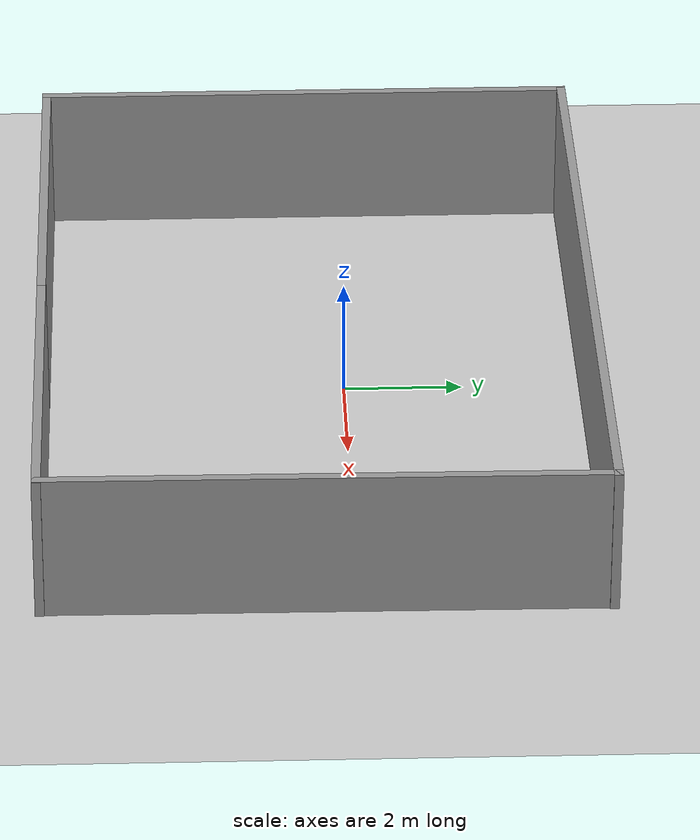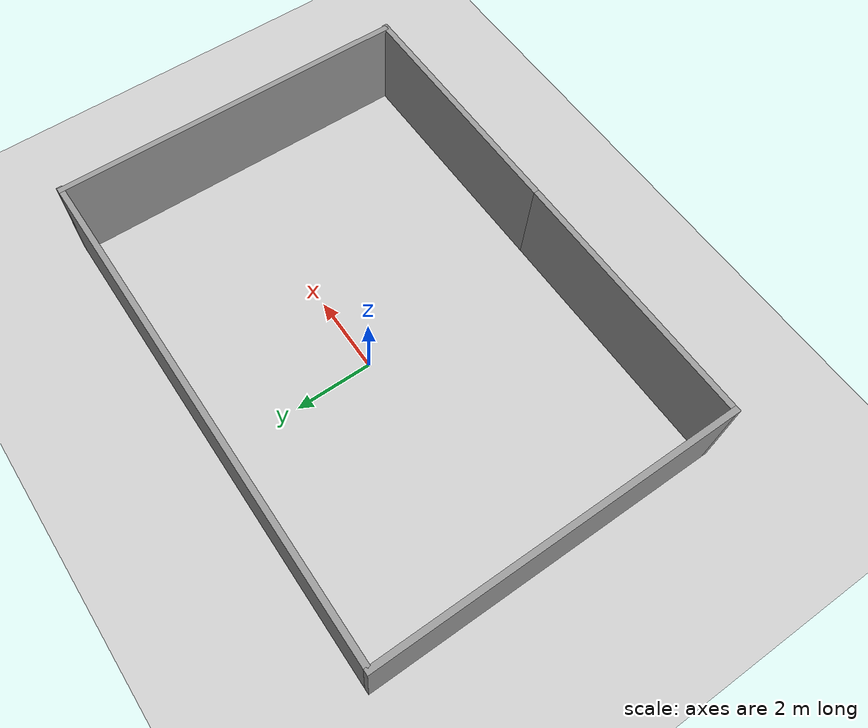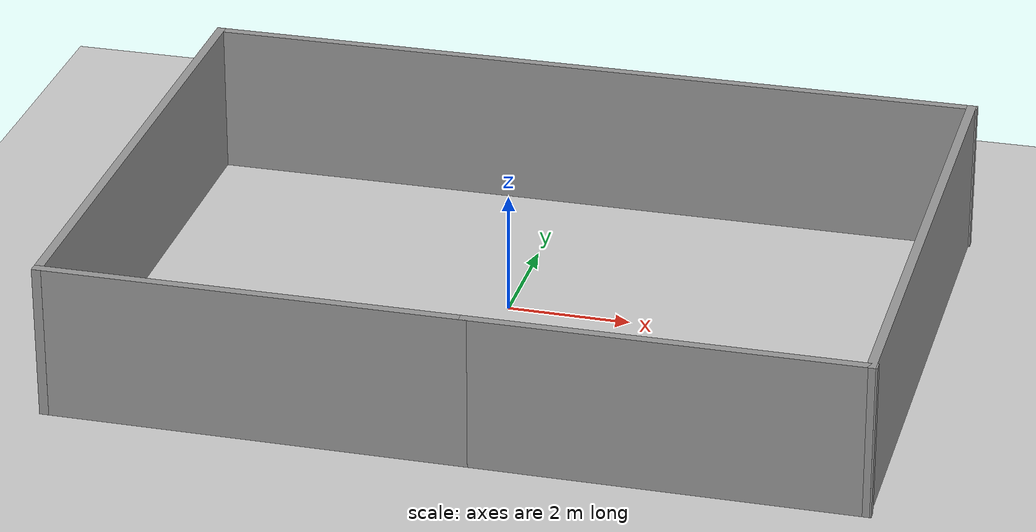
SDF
<sdf version="1.7">
 <world name="default">
  <light name="sun" type="directional">
   <pose>0 0 10 0 -0 0</pose>
   <diffuse>0.8 0.8 0.8 1</diffuse>
   <specular>0.2 0.2 0.2 1</specular>
   <attenuation>
    <range>1000</range>
    <constant>0.9</constant>
    <linear>0.01</linear>
    <quadratic>0.001</quadratic>
   </attenuation>
   <direction>-0.5 0.1 -0.9</direction>
   <spot><inner_angle>0</inner_angle><outer_angle>0</outer_angle><falloff>0</falloff></spot>
  </light>
  <model name="ground_plane">
   <static>1</static>
   <link name="link">
    <collision name="collision">
     <geometry><plane><normal>0 0 1</normal><size>100 100</size></plane></geometry>
     <surface><friction><ode><mu>100</mu><mu2>50</mu2></ode></friction></surface>
    </collision>
    <visual name="visual">
     <cast_shadows>0</cast_shadows>
     <geometry><plane><normal>0 0 1</normal><size>100 100</size></plane></geometry>
     <material>
      <script><uri>file://media/materials/scripts/gazebo.material</uri><name>Gazebo/Grey</name></script>
     </material>
    </visual>
   </link>
  </model>
  <gravity>0 0 -9.8</gravity>
  <magnetic_field>6e-06 2.3e-05 -4.2e-05</magnetic_field>
  <atmosphere type="adiabatic"/>
  <physics type="ode">
   <max_step_size>0.001</max_step_size>
   <real_time_factor>1</real_time_factor>
   <real_time_update_rate>1000</real_time_update_rate>
  </physics>
  <scene><ambient>0.4 0.4 0.4 1</ambient><background>0.7 0.7 0.7 1</background><shadows>1</shadows></scene>
  <audio><device>default</device></audio>
  <spherical_coordinates>
   <surface_model>EARTH_WGS84</surface_model>
   <latitude_deg>0</latitude_deg>
   <longitude_deg>0</longitude_deg>
   <elevation>0</elevation>
   <heading_deg>0</heading_deg>
  </spherical_coordinates>
  <model name="Wall">
   <pose>0.358699 -0.497517 0 0 -0 0</pose>
   <link name="Wall_1">
    <collision name="Wall_1_Collision">
     <geometry><box><size>6.8118 0.15 2.5</size></box></geometry>
     <pose>0 0 1.25 0 -0 0</pose>
    </collision>
    <visual name="Wall_1_Visual">
     <pose>0 0 1.25 0 -0 0</pose>
     <geometry><box><size>6.8118 0.15 2.5</size></box></geometry>
     <material>
      <script><uri>file://media/materials/scripts/gazebo.material</uri><name>Gazebo/Grey</name></script>
      <ambient>0 0 0 1</ambient>
     </material>
     <meta><layer>0</layer></meta>
    </visual>
    <pose>-3.1074 -4.5633 0 0 -0 0</pose>
   </link>
   <link name="Wall_5">
    <collision name="Wall_5_Collision">
     <geometry><box><size>9.27757 0.15 2.5</size></box></geometry>
     <pose>0 0 1.25 0 -0 0</pose>
    </collision>
    <visual name="Wall_5_Visual">
     <pose>0 0 1.25 0 -0 0</pose>
     <geometry><box><size>9.27757 0.15 2.5</size></box></geometry>
     <material>
      <script><uri>file://media/materials/scripts/gazebo.material</uri><name>Gazebo/Grey</name></script>
      <ambient>0 0 0 1</ambient>
     </material>
     <meta><layer>0</layer></meta>
    </visual>
    <pose>-6.4383 0 0 0 -0 1.5708</pose>
   </link>
   <link name="Wall_6">
    <collision name="Wall_6_Collision">
     <geometry><box><size>13 0.15 2.5</size></box></geometry>
     <pose>0 0 1.25 0 -0 0</pose>
    </collision>
    <visual name="Wall_6_Visual">
     <pose>0 0 1.25 0 -0 0</pose>
     <geometry><box><size>13 0.15 2.5</size></box></geometry>
     <material>
      <script><uri>file://media/materials/scripts/gazebo.material</uri><name>Gazebo/Grey</name></script>
      <ambient>0 0 0 1</ambient>
     </material>
     <meta><layer>0</layer></meta>
    </visual>
    <pose>0.0133 4.5633 0 0 -0 0</pose>
   </link>
   <link name="Wall_7">
    <collision name="Wall_7_Collision">
     <geometry><box><size>9.27722 0.15 2.5</size></box></geometry>
     <pose>0 0 1.25 0 -0 0</pose>
    </collision>
    <visual name="Wall_7_Visual">
     <pose>0 0 1.25 0 -0 0</pose>
     <geometry><box><size>9.27722 0.15 2.5</size></box></geometry>
     <material>
      <script><uri>file://media/materials/scripts/gazebo.material</uri><name>Gazebo/Grey</name></script>
      <ambient>0 0 0 1</ambient>
     </material>
     <meta><layer>0</layer></meta>
    </visual>
    <pose>6.3851 0 0 0 -0 -1.57662</pose>
   </link>
   <link name="Wall_8">
    <collision name="Wall_8_Collision">
     <geometry><box><size>6.285 0.15 2.5</size></box></geometry>
     <pose>0 0 1.25 0 -0 0</pose>
    </collision>
    <visual name="Wall_8_Visual">
     <pose>0 0 1.25 0 -0 0</pose>
     <geometry><box><size>6.285 0.15 2.5</size></box></geometry>
     <material>
      <script><uri>file://media/materials/scripts/gazebo.material</uri><name>Gazebo/Grey</name></script>
      <ambient>0 0 0 1</ambient>
     </material>
     <meta><layer>0</layer></meta>
    </visual>
    <pose>3.3176 -4.5633 0 0 -0 3.14159</pose>
   </link>
   <static>1</static>
  </model>
 </world>
</sdf>
